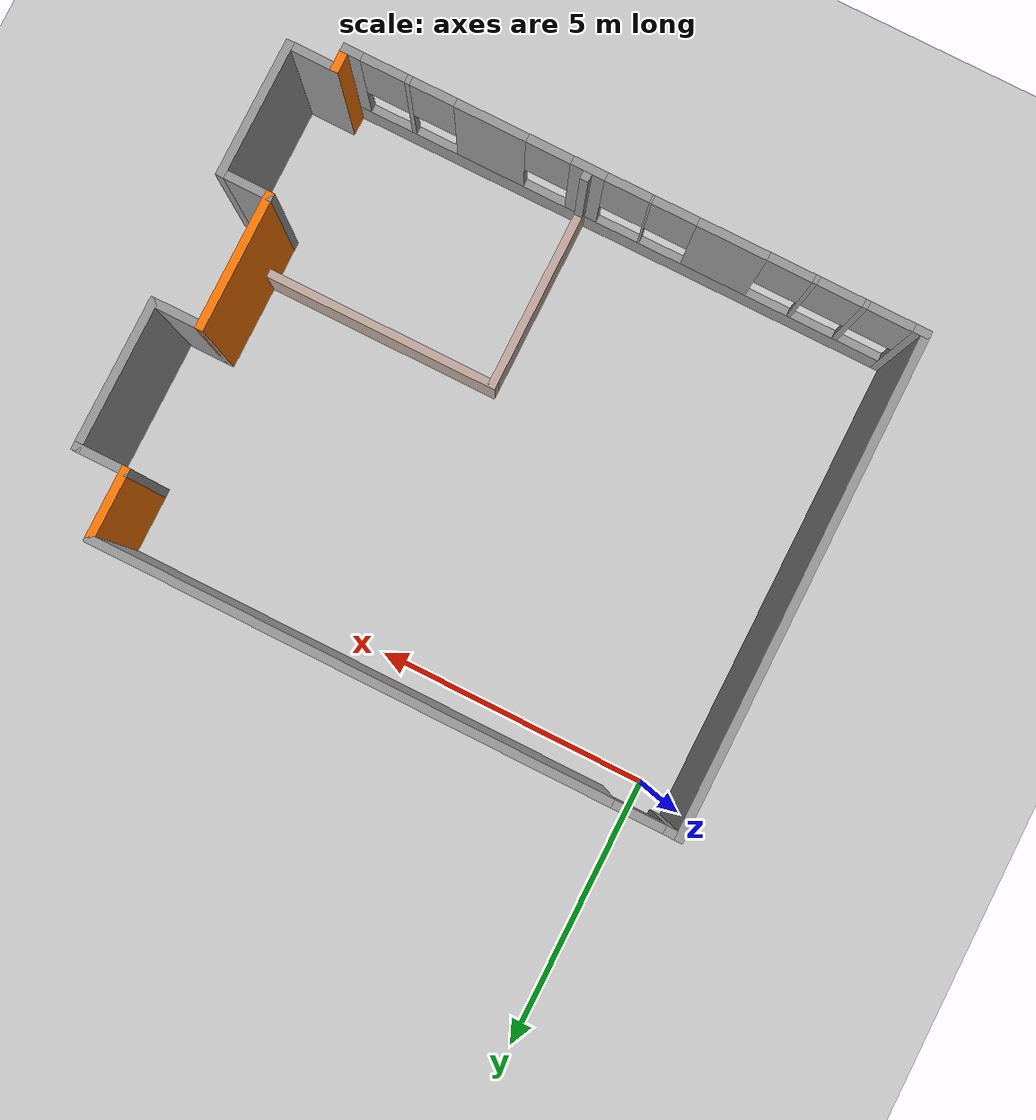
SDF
<sdf version="1.7">
 <world name="default">
  <light name="sun" type="directional">
   <pose>0 0 10 0 -0 0</pose>
   <diffuse>0.8 0.8 0.8 1</diffuse>
   <specular>0.2 0.2 0.2 1</specular>
   <attenuation>
    <range>1000</range>
    <constant>0.9</constant>
    <linear>0.01</linear>
    <quadratic>0.001</quadratic>
   </attenuation>
   <direction>-0.5 0.1 -0.9</direction>
   <spot><inner_angle>0</inner_angle><outer_angle>0</outer_angle><falloff>0</falloff></spot>
  </light>
  <model name="ground_plane">
   <static>1</static>
   <link name="link">
    <collision name="collision">
     <geometry><plane><normal>0 0 1</normal><size>100 100</size></plane></geometry>
     <surface>
      <contact><collide_bitmask>65535</collide_bitmask></contact>
      <friction><ode><mu>100</mu><mu2>50</mu2></ode></friction>
     </surface>
    </collision>
    <visual name="visual">
     <cast_shadows>0</cast_shadows>
     <geometry><plane><normal>0 0 1</normal><size>100 100</size></plane></geometry>
     <material>
      <script><uri>file://media/materials/scripts/gazebo.material</uri><name>Gazebo/Grey</name></script>
     </material>
    </visual>
   </link>
  </model>
  <gravity>0 0 -9.8</gravity>
  <magnetic_field>6e-06 2.3e-05 -4.2e-05</magnetic_field>
  <atmosphere type="adiabatic"/>
  <physics type="ode">
   <max_step_size>0.001</max_step_size>
   <real_time_factor>1</real_time_factor>
   <real_time_update_rate>1000</real_time_update_rate>
  </physics>
  <scene><ambient>0.4 0.4 0.4 1</ambient><background>0.7 0.7 0.7 1</background><shadows>1</shadows></scene>
  <spherical_coordinates>
   <surface_model>EARTH_WGS84</surface_model>
   <latitude_deg>0</latitude_deg>
   <longitude_deg>0</longitude_deg>
   <elevation>0</elevation>
   <heading_deg>0</heading_deg>
  </spherical_coordinates>
  <model name="Salle">
   <model name="Test2">
    <pose>-4e-06 0 0 0 -0 0</pose>
    <link name="Wall_15">
     <pose>-0.425 4.425 0 0 -0 0</pose>
     <visual name="Wall_15_Visual_0">
      <pose>-5.07847 0 1.25 0 -0 0</pose>
      <geometry><box><size>0.343067 0.15 2.5</size></box></geometry>
      <material>
       <script><uri>file://media/materials/scripts/gazebo.material</uri><name>Gazebo/Grey</name></script>
       <ambient>1 1 1 1</ambient>
      </material>
      <meta><layer>0</layer></meta>
     </visual>
     <collision name="Wall_15_Collision_0">
      <geometry><box><size>0.343067 0.15 2.5</size></box></geometry>
      <pose>-5.07847 0 1.25 0 -0 0</pose>
     </collision>
     <visual name="Wall_15_Visual_1">
      <pose>0.621534 0 1.25 0 -0 0</pose>
      <geometry><box><size>9.25693 0.15 2.5</size></box></geometry>
      <material>
       <script><uri>file://media/materials/scripts/gazebo.material</uri><name>Gazebo/Grey</name></script>
       <ambient>1 1 1 1</ambient>
      </material>
      <meta><layer>0</layer></meta>
     </visual>
     <collision name="Wall_15_Collision_1">
      <geometry><box><size>9.25693 0.15 2.5</size></box></geometry>
      <pose>0.621534 0 1.25 0 -0 0</pose>
     </collision>
     <visual name="Wall_15_Visual_2">
      <pose>-4.45693 0 2.25 0 -0 0</pose>
      <geometry><box><size>0.9 0.15 0.5</size></box></geometry>
      <material>
       <script><uri>file://media/materials/scripts/gazebo.material</uri><name>Gazebo/Grey</name></script>
       <ambient>1 1 1 1</ambient>
      </material>
      <meta><layer>0</layer></meta>
     </visual>
     <collision name="Wall_15_Collision_2">
      <geometry><box><size>0.9 0.15 0.5</size></box></geometry>
      <pose>-4.45693 0 2.25 0 -0 0</pose>
     </collision>
    </link>
    <link name="Wall_18">
     <collision name="Wall_18_Collision">
      <geometry><box><size>9 0.15 2.5</size></box></geometry>
      <pose>0 0 1.25 0 -0 0</pose>
     </collision>
     <visual name="Wall_18_Visual">
      <pose>0 0 1.25 0 -0 0</pose>
      <geometry><box><size>9 0.15 2.5</size></box></geometry>
      <material>
       <script><uri>file://media/materials/scripts/gazebo.material</uri><name>Gazebo/Grey</name></script>
       <ambient>1 1 1 1</ambient>
      </material>
      <meta><layer>0</layer></meta>
     </visual>
     <pose>-5.6 0 0 0 -0 -1.5708</pose>
    </link>
    <link name="Wall_20">
     <pose>-0.425 -4.425 0 0 -0 0</pose>
     <visual name="Wall_20_Visual_0">
      <pose>-5.10703 0 1.25 0 -0 0</pose>
      <geometry><box><size>0.285945 0.15 2.5</size></box></geometry>
      <material>
       <script><uri>file://media/materials/scripts/gazebo.material</uri><name>Gazebo/Grey</name></script>
       <ambient>1 1 1 1</ambient>
      </material>
      <meta><layer>0</layer></meta>
     </visual>
     <collision name="Wall_20_Collision_0">
      <geometry><box><size>0.285945 0.15 2.5</size></box></geometry>
      <pose>-5.10703 0 1.25 0 -0 0</pose>
     </collision>
     <visual name="Wall_20_Visual_1">
      <pose>0.142973 0 0.25 0 -0 0</pose>
      <geometry><box><size>10.2141 0.15 0.5</size></box></geometry>
      <material>
       <script><uri>file://media/materials/scripts/gazebo.material</uri><name>Gazebo/Grey</name></script>
       <ambient>1 1 1 1</ambient>
      </material>
      <meta><layer>0</layer></meta>
     </visual>
     <collision name="Wall_20_Collision_1">
      <geometry><box><size>10.2141 0.15 0.5</size></box></geometry>
      <pose>0.142973 0 0.25 0 -0 0</pose>
     </collision>
     <visual name="Wall_20_Visual_2">
      <pose>-4.11771 0 1.5 0 -0 0</pose>
      <geometry><box><size>0.092688 0.15 2</size></box></geometry>
      <material>
       <script><uri>file://media/materials/scripts/gazebo.material</uri><name>Gazebo/Grey</name></script>
       <ambient>1 1 1 1</ambient>
      </material>
      <meta><layer>0</layer></meta>
     </visual>
     <collision name="Wall_20_Collision_2">
      <geometry><box><size>0.092688 0.15 2</size></box></geometry>
      <pose>-4.11771 0 1.5 0 -0 0</pose>
     </collision>
     <visual name="Wall_20_Visual_3">
      <pose>-3.23395 0 1.5 0 -0 0</pose>
      <geometry><box><size>0.074834 0.15 2</size></box></geometry>
      <material>
       <script><uri>file://media/materials/scripts/gazebo.material</uri><name>Gazebo/Grey</name></script>
       <ambient>1 1 1 1</ambient>
      </material>
      <meta><layer>0</layer></meta>
     </visual>
     <collision name="Wall_20_Collision_3">
      <geometry><box><size>0.074834 0.15 2</size></box></geometry>
      <pose>-3.23395 0 1.5 0 -0 0</pose>
     </collision>
     <visual name="Wall_20_Visual_4">
      <pose>-1.76994 0 1.5 0 -0 0</pose>
      <geometry><box><size>1.25318 0.15 2</size></box></geometry>
      <material>
       <script><uri>file://media/materials/scripts/gazebo.material</uri><name>Gazebo/Grey</name></script>
       <ambient>1 1 1 1</ambient>
      </material>
      <meta><layer>0</layer></meta>
     </visual>
     <collision name="Wall_20_Collision_4">
      <geometry><box><size>1.25318 0.15 2</size></box></geometry>
      <pose>-1.76994 0 1.5 0 -0 0</pose>
     </collision>
     <visual name="Wall_20_Visual_5">
      <pose>-0.323789 0 1.5 0 -0 0</pose>
      <geometry><box><size>0.039126 0.15 2</size></box></geometry>
      <material>
       <script><uri>file://media/materials/scripts/gazebo.material</uri><name>Gazebo/Grey</name></script>
       <ambient>1 1 1 1</ambient>
      </material>
      <meta><layer>0</layer></meta>
     </visual>
     <collision name="Wall_20_Collision_5">
      <geometry><box><size>0.039126 0.15 2</size></box></geometry>
      <pose>-0.323789 0 1.5 0 -0 0</pose>
     </collision>
     <visual name="Wall_20_Visual_6">
      <pose>0.800997 0 1.5 0 -0 0</pose>
      <geometry><box><size>0.610446 0.15 2</size></box></geometry>
      <material>
       <script><uri>file://media/materials/scripts/gazebo.material</uri><name>Gazebo/Grey</name></script>
       <ambient>1 1 1 1</ambient>
      </material>
      <meta><layer>0</layer></meta>
     </visual>
     <collision name="Wall_20_Collision_6">
      <geometry><box><size>0.610446 0.15 2</size></box></geometry>
      <pose>0.800997 0 1.5 0 -0 0</pose>
     </collision>
     <visual name="Wall_20_Visual_7">
      <pose>2.55066 0 1.5 0 -0 0</pose>
      <geometry><box><size>1.28889 0.15 2</size></box></geometry>
      <material>
       <script><uri>file://media/materials/scripts/gazebo.material</uri><name>Gazebo/Grey</name></script>
       <ambient>1 1 1 1</ambient>
      </material>
      <meta><layer>0</layer></meta>
     </visual>
     <collision name="Wall_20_Collision_7">
      <geometry><box><size>1.28889 0.15 2</size></box></geometry>
      <pose>2.55066 0 1.5 0 -0 0</pose>
     </collision>
     <visual name="Wall_20_Visual_8">
      <pose>4.0388 0 1.5 0 -0 0</pose>
      <geometry><box><size>0.08739 0.15 2</size></box></geometry>
      <material>
       <script><uri>file://media/materials/scripts/gazebo.material</uri><name>Gazebo/Grey</name></script>
       <ambient>1 1 1 1</ambient>
      </material>
      <meta><layer>0</layer></meta>
     </visual>
     <collision name="Wall_20_Collision_8">
      <geometry><box><size>0.08739 0.15 2</size></box></geometry>
      <pose>4.0388 0 1.5 0 -0 0</pose>
     </collision>
     <visual name="Wall_20_Visual_9">
      <pose>5.06625 0 1.5 0 -0 0</pose>
      <geometry><box><size>0.367501 0.15 2</size></box></geometry>
      <material>
       <script><uri>file://media/materials/scripts/gazebo.material</uri><name>Gazebo/Grey</name></script>
       <ambient>1 1 1 1</ambient>
      </material>
      <meta><layer>0</layer></meta>
     </visual>
     <collision name="Wall_20_Collision_9">
      <geometry><box><size>0.367501 0.15 2</size></box></geometry>
      <pose>5.06625 0 1.5 0 -0 0</pose>
     </collision>
     <visual name="Wall_20_Visual_10">
      <pose>-4.56405 0 1.9 0 -0 0</pose>
      <geometry><box><size>0.8 0.15 1.2</size></box></geometry>
      <material>
       <script><uri>file://media/materials/scripts/gazebo.material</uri><name>Gazebo/Grey</name></script>
       <ambient>1 1 1 1</ambient>
      </material>
      <meta><layer>0</layer></meta>
     </visual>
     <collision name="Wall_20_Collision_10">
      <geometry><box><size>0.8 0.15 1.2</size></box></geometry>
      <pose>-4.56405 0 1.9 0 -0 0</pose>
     </collision>
     <visual name="Wall_20_Visual_11">
      <pose>-3.67137 0 1.9 0 -0 0</pose>
      <geometry><box><size>0.8 0.15 1.2</size></box></geometry>
      <material>
       <script><uri>file://media/materials/scripts/gazebo.material</uri><name>Gazebo/Grey</name></script>
       <ambient>1 1 1 1</ambient>
      </material>
      <meta><layer>0</layer></meta>
     </visual>
     <collision name="Wall_20_Collision_11">
      <geometry><box><size>0.8 0.15 1.2</size></box></geometry>
      <pose>-3.67137 0 1.9 0 -0 0</pose>
     </collision>
     <visual name="Wall_20_Visual_12">
      <pose>-2.79653 0 1.9 0 -0 0</pose>
      <geometry><box><size>0.8 0.15 1.2</size></box></geometry>
      <material>
       <script><uri>file://media/materials/scripts/gazebo.material</uri><name>Gazebo/Grey</name></script>
       <ambient>1 1 1 1</ambient>
      </material>
      <meta><layer>0</layer></meta>
     </visual>
     <collision name="Wall_20_Collision_12">
      <geometry><box><size>0.8 0.15 1.2</size></box></geometry>
      <pose>-2.79653 0 1.9 0 -0 0</pose>
     </collision>
     <visual name="Wall_20_Visual_13">
      <pose>-0.743352 0 1.9 0 -0 0</pose>
      <geometry><box><size>0.8 0.15 1.2</size></box></geometry>
      <material>
       <script><uri>file://media/materials/scripts/gazebo.material</uri><name>Gazebo/Grey</name></script>
       <ambient>1 1 1 1</ambient>
      </material>
      <meta><layer>0</layer></meta>
     </visual>
     <collision name="Wall_20_Collision_13">
      <geometry><box><size>0.8 0.15 1.2</size></box></geometry>
      <pose>-0.743352 0 1.9 0 -0 0</pose>
     </collision>
     <visual name="Wall_20_Visual_14">
      <pose>0.095774 0 1.9 0 -0 0</pose>
      <geometry><box><size>0.8 0.15 1.2</size></box></geometry>
      <material>
       <script><uri>file://media/materials/scripts/gazebo.material</uri><name>Gazebo/Grey</name></script>
       <ambient>1 1 1 1</ambient>
      </material>
      <meta><layer>0</layer></meta>
     </visual>
     <collision name="Wall_20_Collision_14">
      <geometry><box><size>0.8 0.15 1.2</size></box></geometry>
      <pose>0.095774 0 1.9 0 -0 0</pose>
     </collision>
     <visual name="Wall_20_Visual_15">
      <pose>1.50622 0 1.9 0 -0 0</pose>
      <geometry><box><size>0.8 0.15 1.2</size></box></geometry>
      <material>
       <script><uri>file://media/materials/scripts/gazebo.material</uri><name>Gazebo/Grey</name></script>
       <ambient>1 1 1 1</ambient>
      </material>
      <meta><layer>0</layer></meta>
     </visual>
     <collision name="Wall_20_Collision_15">
      <geometry><box><size>0.8 0.15 1.2</size></box></geometry>
      <pose>1.50622 0 1.9 0 -0 0</pose>
     </collision>
     <visual name="Wall_20_Visual_16">
      <pose>3.59511 0 1.9 0 -0 0</pose>
      <geometry><box><size>0.8 0.15 1.2</size></box></geometry>
      <material>
       <script><uri>file://media/materials/scripts/gazebo.material</uri><name>Gazebo/Grey</name></script>
       <ambient>1 1 1 1</ambient>
      </material>
      <meta><layer>0</layer></meta>
     </visual>
     <collision name="Wall_20_Collision_16">
      <geometry><box><size>0.8 0.15 1.2</size></box></geometry>
      <pose>3.59511 0 1.9 0 -0 0</pose>
     </collision>
     <visual name="Wall_20_Visual_17">
      <pose>4.4825 0 1.9 0 -0 0</pose>
      <geometry><box><size>0.8 0.15 1.2</size></box></geometry>
      <material>
       <script><uri>file://media/materials/scripts/gazebo.material</uri><name>Gazebo/Grey</name></script>
       <ambient>1 1 1 1</ambient>
      </material>
      <meta><layer>0</layer></meta>
     </visual>
     <collision name="Wall_20_Collision_17">
      <geometry><box><size>0.8 0.15 1.2</size></box></geometry>
      <pose>4.4825 0 1.9 0 -0 0</pose>
     </collision>
    </link>
    <link name="Wall_22">
     <collision name="Wall_22_Collision">
      <geometry><box><size>0.5 0.15 2.5</size></box></geometry>
      <pose>0 0 1.25 0 -0 0</pose>
     </collision>
     <visual name="Wall_22_Visual">
      <pose>0 0 1.25 0 -0 0</pose>
      <geometry><box><size>0.5 0.15 2.5</size></box></geometry>
      <material>
       <script><uri>file://media/materials/scripts/gazebo.material</uri><name>Gazebo/Grey</name></script>
       <ambient>0.996078 0.47451 0.0196078 1</ambient>
      </material>
      <meta><layer>0</layer></meta>
     </visual>
     <pose>4.75 -4.25 0 0 -0 1.5708</pose>
    </link>
    <link name="Wall_23">
     <collision name="Wall_23_Collision">
      <geometry><box><size>1 0.15 2.5</size></box></geometry>
      <pose>0 0 1.25 0 -0 0</pose>
     </collision>
     <visual name="Wall_23_Visual">
      <pose>0 0 1.25 0 -0 0</pose>
      <geometry><box><size>1 0.15 2.5</size></box></geometry>
      <material>
       <script><uri>file://media/materials/scripts/gazebo.material</uri><name>Gazebo/Grey</name></script>
       <ambient>1 1 1 1</ambient>
      </material>
      <meta><layer>0</layer></meta>
     </visual>
     <pose>5.175 -4.075 0 0 -0 0</pose>
    </link>
    <link name="Wall_24">
     <collision name="Wall_24_Collision">
      <geometry><box><size>2.5 0.15 2.5</size></box></geometry>
      <pose>0 0 1.25 0 -0 0</pose>
     </collision>
     <visual name="Wall_24_Visual">
      <pose>0 0 1.25 0 -0 0</pose>
      <geometry><box><size>2.5 0.15 2.5</size></box></geometry>
      <material>
       <script><uri>file://media/materials/scripts/gazebo.material</uri><name>Gazebo/Grey</name></script>
       <ambient>1 1 1 1</ambient>
      </material>
      <meta><layer>0</layer></meta>
     </visual>
     <pose>5.6 -2.9 0 0 -0 1.5708</pose>
    </link>
    <link name="Wall_25">
     <collision name="Wall_25_Collision">
      <geometry><box><size>1 0.15 2.5</size></box></geometry>
      <pose>0 0 1.25 0 -0 0</pose>
     </collision>
     <visual name="Wall_25_Visual">
      <pose>0 0 1.25 0 -0 0</pose>
      <geometry><box><size>1 0.15 2.5</size></box></geometry>
      <material>
       <script><uri>file://media/materials/scripts/gazebo.material</uri><name>Gazebo/Grey</name></script>
       <ambient>1 1 1 1</ambient>
      </material>
      <meta><layer>0</layer></meta>
     </visual>
     <pose>5.175 -1.725 0 0 -0 3.14159</pose>
    </link>
    <link name="Wall_26">
     <collision name="Wall_26_Collision">
      <geometry><box><size>2.5 0.15 2.5</size></box></geometry>
      <pose>0 0 1.25 0 -0 0</pose>
     </collision>
     <visual name="Wall_26_Visual">
      <pose>0 0 1.25 0 -0 0</pose>
      <geometry><box><size>2.5 0.15 2.5</size></box></geometry>
      <material>
       <script><uri>file://media/materials/scripts/gazebo.material</uri><name>Gazebo/Grey</name></script>
       <ambient>0.996078 0.47451 0.0196078 1</ambient>
      </material>
      <meta><layer>0</layer></meta>
     </visual>
     <pose>4.75 -0.55 0 0 -0 1.5708</pose>
    </link>
    <link name="Wall_27">
     <collision name="Wall_27_Collision">
      <geometry><box><size>1 0.15 2.5</size></box></geometry>
      <pose>0 0 1.25 0 -0 0</pose>
     </collision>
     <visual name="Wall_27_Visual">
      <pose>0 0 1.25 0 -0 0</pose>
      <geometry><box><size>1 0.15 2.5</size></box></geometry>
      <material>
       <script><uri>file://media/materials/scripts/gazebo.material</uri><name>Gazebo/Grey</name></script>
       <ambient>1 1 1 1</ambient>
      </material>
      <meta><layer>0</layer></meta>
     </visual>
     <pose>5.175 0.625 0 0 -0 0</pose>
    </link>
    <link name="Wall_28">
     <collision name="Wall_28_Collision">
      <geometry><box><size>2.75 0.15 2.5</size></box></geometry>
      <pose>0 0 1.25 0 -0 0</pose>
     </collision>
     <visual name="Wall_28_Visual">
      <pose>0 0 1.25 0 -0 0</pose>
      <geometry><box><size>2.75 0.15 2.5</size></box></geometry>
      <material>
       <script><uri>file://media/materials/scripts/gazebo.material</uri><name>Gazebo/Grey</name></script>
       <ambient>1 1 1 1</ambient>
      </material>
      <meta><layer>0</layer></meta>
     </visual>
     <pose>5.6 1.925 0 0 -0 1.5708</pose>
    </link>
    <link name="Wall_29">
     <collision name="Wall_29_Collision">
      <geometry><box><size>1 0.15 2.5</size></box></geometry>
      <pose>0 0 1.25 0 -0 0</pose>
     </collision>
     <visual name="Wall_29_Visual">
      <pose>0 0 1.25 0 -0 0</pose>
      <geometry><box><size>1 0.15 2.5</size></box></geometry>
      <material>
       <script><uri>file://media/materials/scripts/gazebo.material</uri><name>Gazebo/Grey</name></script>
       <ambient>1 1 1 1</ambient>
      </material>
      <meta><layer>0</layer></meta>
     </visual>
     <pose>5.175 3.225 0 0 -0 3.14159</pose>
    </link>
    <link name="Wall_30">
     <collision name="Wall_30_Collision">
      <geometry><box><size>1.35 0.15 2.5</size></box></geometry>
      <pose>0 0 1.25 0 -0 0</pose>
     </collision>
     <visual name="Wall_30_Visual">
      <pose>0 0 1.25 0 -0 0</pose>
      <geometry><box><size>1.35 0.15 2.5</size></box></geometry>
      <material>
       <script><uri>file://media/materials/scripts/gazebo.material</uri><name>Gazebo/Grey</name></script>
       <ambient>0.996078 0.47451 0.0196078 1</ambient>
      </material>
      <meta><layer>0</layer></meta>
     </visual>
     <pose>4.75 3.825 0 0 -0 1.5708</pose>
    </link>
    <link name="Wall_32">
     <collision name="Wall_32_Collision">
      <geometry><box><size>4.5 0.15 0.8</size></box></geometry>
      <pose>0 0 0.4 0 -0 0</pose>
     </collision>
     <visual name="Wall_32_Visual">
      <pose>0 0 0.4 0 -0 0</pose>
      <geometry><box><size>4.5 0.15 0.8</size></box></geometry>
      <material>
       <script><uri>file://media/materials/scripts/gazebo.material</uri><name>Gazebo/Grey</name></script>
       <ambient>0.760784 0.662745 0.627451 1</ambient>
      </material>
      <meta><layer>0</layer></meta>
     </visual>
     <pose>2.53937 -0.932022 0 0 -0 3.14159</pose>
    </link>
    <link name="Wall_33">
     <collision name="Wall_33_Collision">
      <geometry><box><size>3.5 0.15 0.8</size></box></geometry>
      <pose>0 0 0.4 0 -0 0</pose>
     </collision>
     <visual name="Wall_33_Visual">
      <pose>0 0 0.4 0 -0 0</pose>
      <geometry><box><size>3.5 0.15 0.8</size></box></geometry>
      <material>
       <script><uri>file://media/materials/scripts/gazebo.material</uri><name>Gazebo/Grey</name></script>
       <ambient>0.760784 0.662745 0.627451 1</ambient>
      </material>
      <meta><layer>0</layer></meta>
     </visual>
     <pose>0.364371 -2.60702 0 0 -0 -1.5708</pose>
    </link>
    <link name="Wall_34">
     <collision name="Wall_34_Collision">
      <geometry><box><size>0.15 0.15 2.5</size></box></geometry>
      <pose>0 0 1.25 0 -0 0</pose>
     </collision>
     <visual name="Wall_34_Visual">
      <pose>0 0 1.25 0 -0 0</pose>
      <geometry><box><size>0.15 0.15 2.5</size></box></geometry>
      <material>
       <script><uri>file://media/materials/scripts/gazebo.material</uri><name>Gazebo/Grey</name></script>
       <ambient>1 1 1 1</ambient>
      </material>
      <meta><layer>0</layer></meta>
     </visual>
     <pose>0.364371 -4.28202 0 0 -0 0</pose>
    </link>
    <static>1</static>
   </model>
   <static>0</static>
   <pose>4.98537 -4.01023 0 0 -0 0</pose>
  </model>
 </world>
</sdf>
